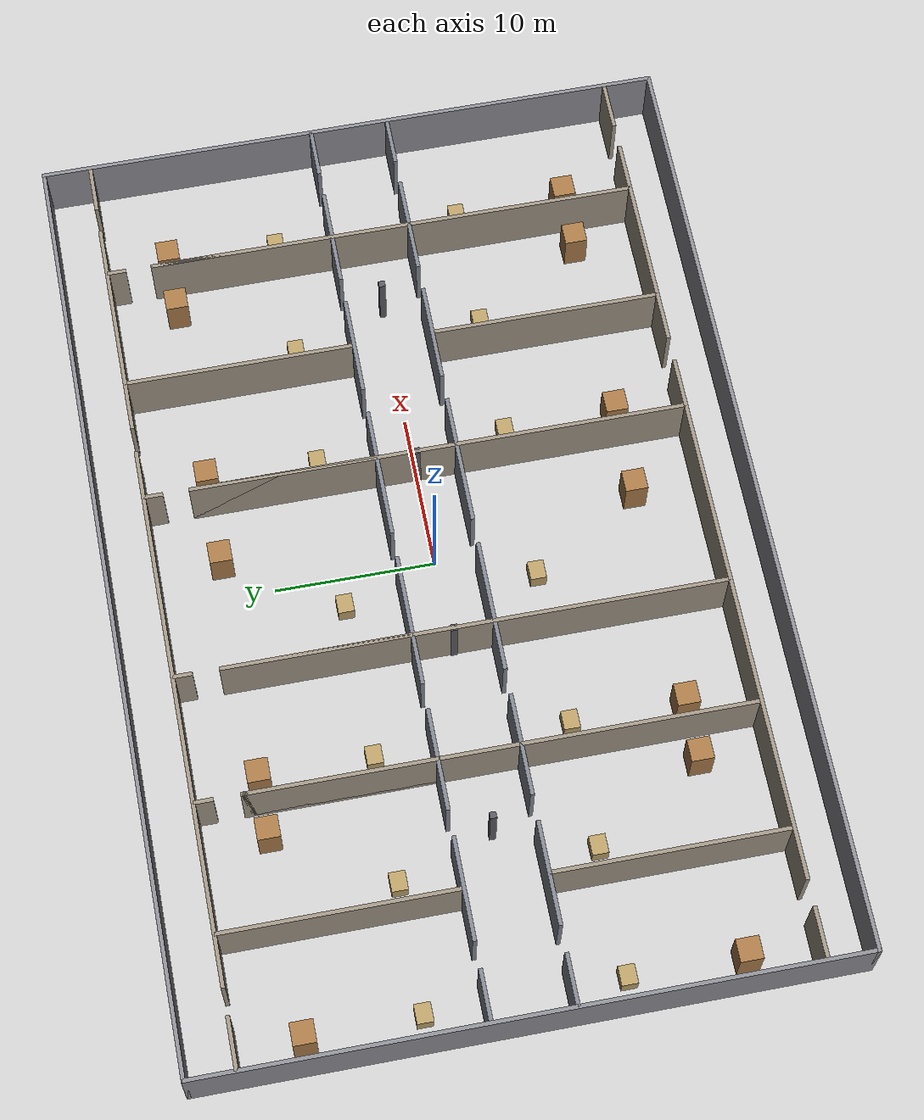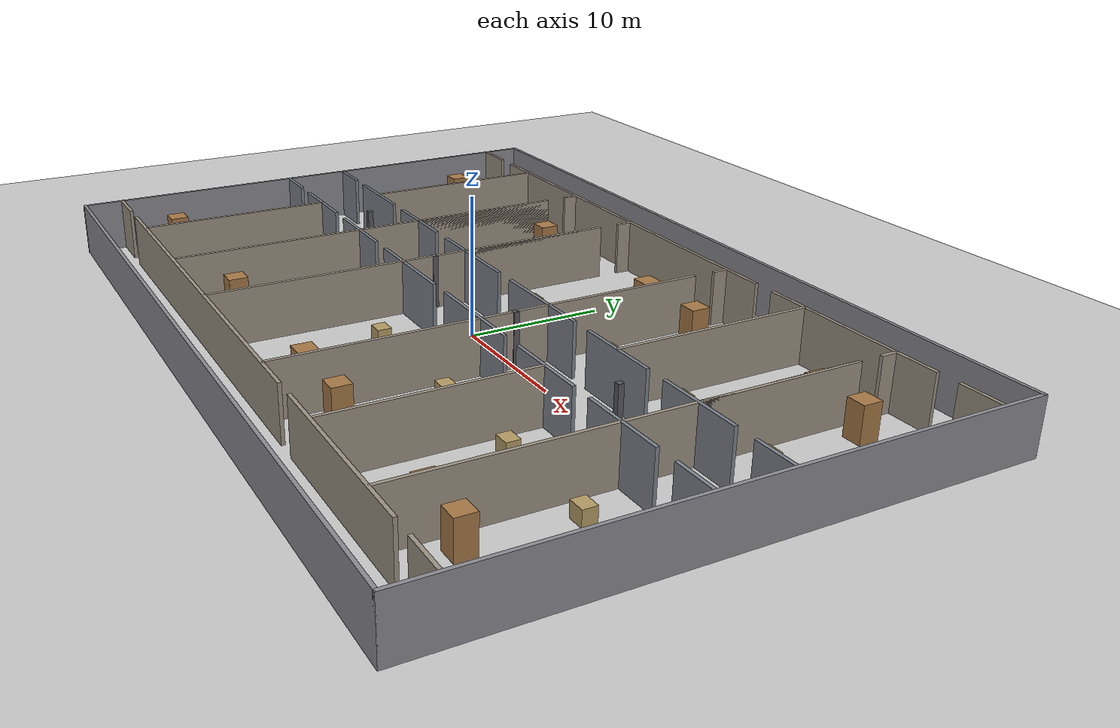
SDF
<?xml version="1.0" encoding="UTF-8"?>
<sdf version="1.9">
  <world name="garudanex_facility">
    <physics type="ode">
      <max_step_size>0.004</max_step_size>
      <real_time_factor>1.0</real_time_factor>
      <real_time_update_rate>250</real_time_update_rate>
    </physics>
    <gravity>0 0 -9.8</gravity>
    <magnetic_field>6e-06 2.3e-05 -4.2e-05</magnetic_field>
    <atmosphere type="adiabatic"/>
    <scene>
      <grid>false</grid>
      <ambient>0.4 0.4 0.4 1</ambient>
      <background>0.7 0.7 0.7 1</background>
      <shadows>true</shadows>
    </scene>
    <model name="ground_plane">
      <static>true</static>
      <link name="link">
        <collision name="collision">
          <geometry>
            <plane>
              <normal>0 0 1</normal>
              <size>1 1</size>
            </plane>
          </geometry>
          <surface>
            <friction>
              <ode/>
            </friction>
            <bounce/>
            <contact/>
          </surface>
        </collision>
        <visual name="visual">
          <geometry>
            <plane>
              <normal>0 0 1</normal>
              <size>500 500</size>
            </plane>
          </geometry>
          <material>
            <ambient>0.8 0.8 0.8 1</ambient>
            <diffuse>0.8 0.8 0.8 1</diffuse>
            <specular>0.8 0.8 0.8 1</specular>
          </material>
        </visual>
        <pose>0 0 0 0 -0 0</pose>
        <inertial>
          <pose>0 0 0 0 -0 0</pose>
          <mass>1</mass>
          <inertia>
            <ixx>1</ixx>
            <ixy>0</ixy>
            <ixz>0</ixz>
            <iyy>1</iyy>
            <iyz>0</iyz>
            <izz>1</izz>
          </inertia>
        </inertial>
        <enable_wind>false</enable_wind>
      </link>
      <pose>0 0 0 0 -0 0</pose>
      <self_collide>false</self_collide>
    </model>
    <light name="sunUTC" type="directional">
      <pose>0 0 500 0 -0 0</pose>
      <cast_shadows>true</cast_shadows>
      <intensity>1</intensity>
      <direction>0.001 0.625 -0.78</direction>
      <diffuse>0.904 0.904 0.904 1</diffuse>
      <specular>0.271 0.271 0.271 1</specular>
      <attenuation>
        <range>2000</range>
        <linear>0</linear>
        <constant>1</constant>
        <quadratic>0</quadratic>
      </attenuation>
      <spot>
        <inner_angle>0</inner_angle>
        <outer_angle>0</outer_angle>
        <falloff>0</falloff>
      </spot>
    </light>
    <spherical_coordinates>
      <surface_model>EARTH_WGS84</surface_model>
      <world_frame_orientation>ENU</world_frame_orientation>
      <latitude_deg>47.397971057728974</latitude_deg>
      <longitude_deg> 8.546163739800146</longitude_deg>
      <elevation>0</elevation>
    </spherical_coordinates>

    <model name="shell">
    <static>true</static>
    <link name="north">
      <pose>0.000 20.000 2.000 0 0 0</pose>
      <collision name="c"><geometry><box><size>60.250 0.250 4.000</size></box></geometry></collision>
      <visual name="v">
        <geometry><box><size>60.250 0.250 4.000</size></box></geometry>
        <material><ambient>0.55 0.55 0.58 1</ambient><diffuse>0.55 0.55 0.58 1</diffuse></material>
      </visual>
    </link>
    <link name="south">
      <pose>0.000 -20.000 2.000 0 0 0</pose>
      <collision name="c"><geometry><box><size>60.250 0.250 4.000</size></box></geometry></collision>
      <visual name="v">
        <geometry><box><size>60.250 0.250 4.000</size></box></geometry>
        <material><ambient>0.55 0.55 0.58 1</ambient><diffuse>0.55 0.55 0.58 1</diffuse></material>
      </visual>
    </link>
    <link name="east">
      <pose>30.000 0.000 2.000 0 0 0</pose>
      <collision name="c"><geometry><box><size>0.250 40.250 4.000</size></box></geometry></collision>
      <visual name="v">
        <geometry><box><size>0.250 40.250 4.000</size></box></geometry>
        <material><ambient>0.55 0.55 0.58 1</ambient><diffuse>0.55 0.55 0.58 1</diffuse></material>
      </visual>
    </link>
    <link name="west">
      <pose>-30.000 0.000 2.000 0 0 0</pose>
      <collision name="c"><geometry><box><size>0.250 40.250 4.000</size></box></geometry></collision>
      <visual name="v">
        <geometry><box><size>0.250 40.250 4.000</size></box></geometry>
        <material><ambient>0.55 0.55 0.58 1</ambient><diffuse>0.55 0.55 0.58 1</diffuse></material>
      </visual>
    </link>
    </model>

    <model name="spine">
    <static>true</static>
    <link name="spine_n_0">
      <pose>-28.400 2.500 2.000 0 0 0</pose>
      <collision name="c"><geometry><box><size>3.200 0.250 4.000</size></box></geometry></collision>
      <visual name="v">
        <geometry><box><size>3.200 0.250 4.000</size></box></geometry>
        <material><ambient>0.50 0.52 0.56 1</ambient><diffuse>0.50 0.52 0.56 1</diffuse></material>
      </visual>
    </link>
    <link name="spine_n_2">
      <pose>-22.000 2.500 2.000 0 0 0</pose>
      <collision name="c"><geometry><box><size>6.400 0.250 4.000</size></box></geometry></collision>
      <visual name="v">
        <geometry><box><size>6.400 0.250 4.000</size></box></geometry>
        <material><ambient>0.50 0.52 0.56 1</ambient><diffuse>0.50 0.52 0.56 1</diffuse></material>
      </visual>
    </link>
    <link name="spine_n_4">
      <pose>-14.000 2.500 2.000 0 0 0</pose>
      <collision name="c"><geometry><box><size>6.400 0.250 4.000</size></box></geometry></collision>
      <visual name="v">
        <geometry><box><size>6.400 0.250 4.000</size></box></geometry>
        <material><ambient>0.50 0.52 0.56 1</ambient><diffuse>0.50 0.52 0.56 1</diffuse></material>
      </visual>
    </link>
    <link name="spine_n_6">
      <pose>-5.000 2.500 2.000 0 0 0</pose>
      <collision name="c"><geometry><box><size>8.400 0.250 4.000</size></box></geometry></collision>
      <visual name="v">
        <geometry><box><size>8.400 0.250 4.000</size></box></geometry>
        <material><ambient>0.50 0.52 0.56 1</ambient><diffuse>0.50 0.52 0.56 1</diffuse></material>
      </visual>
    </link>
    <link name="spine_n_8">
      <pose>5.000 2.500 2.000 0 0 0</pose>
      <collision name="c"><geometry><box><size>8.400 0.250 4.000</size></box></geometry></collision>
      <visual name="v">
        <geometry><box><size>8.400 0.250 4.000</size></box></geometry>
        <material><ambient>0.50 0.52 0.56 1</ambient><diffuse>0.50 0.52 0.56 1</diffuse></material>
      </visual>
    </link>
    <link name="spine_n_10">
      <pose>14.000 2.500 2.000 0 0 0</pose>
      <collision name="c"><geometry><box><size>6.400 0.250 4.000</size></box></geometry></collision>
      <visual name="v">
        <geometry><box><size>6.400 0.250 4.000</size></box></geometry>
        <material><ambient>0.50 0.52 0.56 1</ambient><diffuse>0.50 0.52 0.56 1</diffuse></material>
      </visual>
    </link>
    <link name="spine_n_12">
      <pose>22.000 2.500 2.000 0 0 0</pose>
      <collision name="c"><geometry><box><size>6.400 0.250 4.000</size></box></geometry></collision>
      <visual name="v">
        <geometry><box><size>6.400 0.250 4.000</size></box></geometry>
        <material><ambient>0.50 0.52 0.56 1</ambient><diffuse>0.50 0.52 0.56 1</diffuse></material>
      </visual>
    </link>
    <link name="spine_n_14">
      <pose>28.400 2.500 2.000 0 0 0</pose>
      <collision name="c"><geometry><box><size>3.200 0.250 4.000</size></box></geometry></collision>
      <visual name="v">
        <geometry><box><size>3.200 0.250 4.000</size></box></geometry>
        <material><ambient>0.50 0.52 0.56 1</ambient><diffuse>0.50 0.52 0.56 1</diffuse></material>
      </visual>
    </link>
    <link name="spine_s_0">
      <pose>-28.400 -2.500 2.000 0 0 0</pose>
      <collision name="c"><geometry><box><size>3.200 0.250 4.000</size></box></geometry></collision>
      <visual name="v">
        <geometry><box><size>3.200 0.250 4.000</size></box></geometry>
        <material><ambient>0.50 0.52 0.56 1</ambient><diffuse>0.50 0.52 0.56 1</diffuse></material>
      </visual>
    </link>
    <link name="spine_s_2">
      <pose>-22.000 -2.500 2.000 0 0 0</pose>
      <collision name="c"><geometry><box><size>6.400 0.250 4.000</size></box></geometry></collision>
      <visual name="v">
        <geometry><box><size>6.400 0.250 4.000</size></box></geometry>
        <material><ambient>0.50 0.52 0.56 1</ambient><diffuse>0.50 0.52 0.56 1</diffuse></material>
      </visual>
    </link>
    <link name="spine_s_4">
      <pose>-14.000 -2.500 2.000 0 0 0</pose>
      <collision name="c"><geometry><box><size>6.400 0.250 4.000</size></box></geometry></collision>
      <visual name="v">
        <geometry><box><size>6.400 0.250 4.000</size></box></geometry>
        <material><ambient>0.50 0.52 0.56 1</ambient><diffuse>0.50 0.52 0.56 1</diffuse></material>
      </visual>
    </link>
    <link name="spine_s_6">
      <pose>-5.000 -2.500 2.000 0 0 0</pose>
      <collision name="c"><geometry><box><size>8.400 0.250 4.000</size></box></geometry></collision>
      <visual name="v">
        <geometry><box><size>8.400 0.250 4.000</size></box></geometry>
        <material><ambient>0.50 0.52 0.56 1</ambient><diffuse>0.50 0.52 0.56 1</diffuse></material>
      </visual>
    </link>
    <link name="spine_s_8">
      <pose>5.000 -2.500 2.000 0 0 0</pose>
      <collision name="c"><geometry><box><size>8.400 0.250 4.000</size></box></geometry></collision>
      <visual name="v">
        <geometry><box><size>8.400 0.250 4.000</size></box></geometry>
        <material><ambient>0.50 0.52 0.56 1</ambient><diffuse>0.50 0.52 0.56 1</diffuse></material>
      </visual>
    </link>
    <link name="spine_s_10">
      <pose>14.000 -2.500 2.000 0 0 0</pose>
      <collision name="c"><geometry><box><size>6.400 0.250 4.000</size></box></geometry></collision>
      <visual name="v">
        <geometry><box><size>6.400 0.250 4.000</size></box></geometry>
        <material><ambient>0.50 0.52 0.56 1</ambient><diffuse>0.50 0.52 0.56 1</diffuse></material>
      </visual>
    </link>
    <link name="spine_s_12">
      <pose>22.000 -2.500 2.000 0 0 0</pose>
      <collision name="c"><geometry><box><size>6.400 0.250 4.000</size></box></geometry></collision>
      <visual name="v">
        <geometry><box><size>6.400 0.250 4.000</size></box></geometry>
        <material><ambient>0.50 0.52 0.56 1</ambient><diffuse>0.50 0.52 0.56 1</diffuse></material>
      </visual>
    </link>
    <link name="spine_s_14">
      <pose>28.400 -2.500 2.000 0 0 0</pose>
      <collision name="c"><geometry><box><size>3.200 0.250 4.000</size></box></geometry></collision>
      <visual name="v">
        <geometry><box><size>3.200 0.250 4.000</size></box></geometry>
        <material><ambient>0.50 0.52 0.56 1</ambient><diffuse>0.50 0.52 0.56 1</diffuse></material>
      </visual>
    </link>
    </model>

    <model name="rooms_n">
    <static>true</static>
    <link name="pn0_0">
      <pose>-22.000 9.750 2.000 0 0 0</pose>
      <collision name="c"><geometry><box><size>0.250 14.500 4.000</size></box></geometry></collision>
      <visual name="v">
        <geometry><box><size>0.250 14.500 4.000</size></box></geometry>
        <material><ambient>0.62 0.58 0.52 1</ambient><diffuse>0.62 0.58 0.52 1</diffuse></material>
      </visual>
    </link>
    <link name="pn1_0">
      <pose>-14.000 8.350 2.000 0 0 0</pose>
      <collision name="c"><geometry><box><size>0.250 11.700 4.000</size></box></geometry></collision>
      <visual name="v">
        <geometry><box><size>0.250 11.700 4.000</size></box></geometry>
        <material><ambient>0.62 0.58 0.52 1</ambient><diffuse>0.62 0.58 0.52 1</diffuse></material>
      </visual>
    </link>
    <link name="pn1_2">
      <pose>-14.000 16.400 2.000 0 0 0</pose>
      <collision name="c"><geometry><box><size>0.250 1.200 4.000</size></box></geometry></collision>
      <visual name="v">
        <geometry><box><size>0.250 1.200 4.000</size></box></geometry>
        <material><ambient>0.62 0.58 0.52 1</ambient><diffuse>0.62 0.58 0.52 1</diffuse></material>
      </visual>
    </link>
    <link name="pn2_0">
      <pose>-6.000 8.350 2.000 0 0 0</pose>
      <collision name="c"><geometry><box><size>0.250 11.700 4.000</size></box></geometry></collision>
      <visual name="v">
        <geometry><box><size>0.250 11.700 4.000</size></box></geometry>
        <material><ambient>0.62 0.58 0.52 1</ambient><diffuse>0.62 0.58 0.52 1</diffuse></material>
      </visual>
    </link>
    <link name="pn2_2">
      <pose>-6.000 16.400 2.000 0 0 0</pose>
      <collision name="c"><geometry><box><size>0.250 1.200 4.000</size></box></geometry></collision>
      <visual name="v">
        <geometry><box><size>0.250 1.200 4.000</size></box></geometry>
        <material><ambient>0.62 0.58 0.52 1</ambient><diffuse>0.62 0.58 0.52 1</diffuse></material>
      </visual>
    </link>
    <link name="pn3_0">
      <pose>6.000 8.350 2.000 0 0 0</pose>
      <collision name="c"><geometry><box><size>0.250 11.700 4.000</size></box></geometry></collision>
      <visual name="v">
        <geometry><box><size>0.250 11.700 4.000</size></box></geometry>
        <material><ambient>0.62 0.58 0.52 1</ambient><diffuse>0.62 0.58 0.52 1</diffuse></material>
      </visual>
    </link>
    <link name="pn3_2">
      <pose>6.000 16.400 2.000 0 0 0</pose>
      <collision name="c"><geometry><box><size>0.250 1.200 4.000</size></box></geometry></collision>
      <visual name="v">
        <geometry><box><size>0.250 1.200 4.000</size></box></geometry>
        <material><ambient>0.62 0.58 0.52 1</ambient><diffuse>0.62 0.58 0.52 1</diffuse></material>
      </visual>
    </link>
    <link name="pn4_0">
      <pose>14.000 9.750 2.000 0 0 0</pose>
      <collision name="c"><geometry><box><size>0.250 14.500 4.000</size></box></geometry></collision>
      <visual name="v">
        <geometry><box><size>0.250 14.500 4.000</size></box></geometry>
        <material><ambient>0.62 0.58 0.52 1</ambient><diffuse>0.62 0.58 0.52 1</diffuse></material>
      </visual>
    </link>
    <link name="pn5_0">
      <pose>22.000 8.350 2.000 0 0 0</pose>
      <collision name="c"><geometry><box><size>0.250 11.700 4.000</size></box></geometry></collision>
      <visual name="v">
        <geometry><box><size>0.250 11.700 4.000</size></box></geometry>
        <material><ambient>0.62 0.58 0.52 1</ambient><diffuse>0.62 0.58 0.52 1</diffuse></material>
      </visual>
    </link>
    <link name="pn5_2">
      <pose>22.000 16.400 2.000 0 0 0</pose>
      <collision name="c"><geometry><box><size>0.250 1.200 4.000</size></box></geometry></collision>
      <visual name="v">
        <geometry><box><size>0.250 1.200 4.000</size></box></geometry>
        <material><ambient>0.62 0.58 0.52 1</ambient><diffuse>0.62 0.58 0.52 1</diffuse></material>
      </visual>
    </link>
    <link name="backn_0">
      <pose>-28.400 17.000 2.000 0 0 0</pose>
      <collision name="c"><geometry><box><size>3.200 0.250 4.000</size></box></geometry></collision>
      <visual name="v">
        <geometry><box><size>3.200 0.250 4.000</size></box></geometry>
        <material><ambient>0.62 0.58 0.52 1</ambient><diffuse>0.62 0.58 0.52 1</diffuse></material>
      </visual>
    </link>
    <link name="backn_2">
      <pose>-8.000 17.000 2.000 0 0 0</pose>
      <collision name="c"><geometry><box><size>34.400 0.250 4.000</size></box></geometry></collision>
      <visual name="v">
        <geometry><box><size>34.400 0.250 4.000</size></box></geometry>
        <material><ambient>0.62 0.58 0.52 1</ambient><diffuse>0.62 0.58 0.52 1</diffuse></material>
      </visual>
    </link>
    <link name="backn_4">
      <pose>18.000 17.000 2.000 0 0 0</pose>
      <collision name="c"><geometry><box><size>14.400 0.250 4.000</size></box></geometry></collision>
      <visual name="v">
        <geometry><box><size>14.400 0.250 4.000</size></box></geometry>
        <material><ambient>0.62 0.58 0.52 1</ambient><diffuse>0.62 0.58 0.52 1</diffuse></material>
      </visual>
    </link>
    <link name="backn_6">
      <pose>28.400 17.000 2.000 0 0 0</pose>
      <collision name="c"><geometry><box><size>3.200 0.250 4.000</size></box></geometry></collision>
      <visual name="v">
        <geometry><box><size>3.200 0.250 4.000</size></box></geometry>
        <material><ambient>0.62 0.58 0.52 1</ambient><diffuse>0.62 0.58 0.52 1</diffuse></material>
      </visual>
    </link>
    </model>

    <model name="rooms_s">
    <static>true</static>
    <link name="ps0_0">
      <pose>-22.000 -9.750 2.000 0 0 0</pose>
      <collision name="c"><geometry><box><size>0.250 14.500 4.000</size></box></geometry></collision>
      <visual name="v">
        <geometry><box><size>0.250 14.500 4.000</size></box></geometry>
        <material><ambient>0.62 0.58 0.52 1</ambient><diffuse>0.62 0.58 0.52 1</diffuse></material>
      </visual>
    </link>
    <link name="ps1_0">
      <pose>-14.000 -1.400 2.000 0 0 0</pose>
      <collision name="c"><geometry><box><size>0.250 31.200 4.000</size></box></geometry></collision>
      <visual name="v">
        <geometry><box><size>0.250 31.200 4.000</size></box></geometry>
        <material><ambient>0.62 0.58 0.52 1</ambient><diffuse>0.62 0.58 0.52 1</diffuse></material>
      </visual>
    </link>
    <link name="ps2_0">
      <pose>-6.000 -1.400 2.000 0 0 0</pose>
      <collision name="c"><geometry><box><size>0.250 31.200 4.000</size></box></geometry></collision>
      <visual name="v">
        <geometry><box><size>0.250 31.200 4.000</size></box></geometry>
        <material><ambient>0.62 0.58 0.52 1</ambient><diffuse>0.62 0.58 0.52 1</diffuse></material>
      </visual>
    </link>
    <link name="ps3_0">
      <pose>6.000 -1.400 2.000 0 0 0</pose>
      <collision name="c"><geometry><box><size>0.250 31.200 4.000</size></box></geometry></collision>
      <visual name="v">
        <geometry><box><size>0.250 31.200 4.000</size></box></geometry>
        <material><ambient>0.62 0.58 0.52 1</ambient><diffuse>0.62 0.58 0.52 1</diffuse></material>
      </visual>
    </link>
    <link name="ps4_0">
      <pose>14.000 -9.750 2.000 0 0 0</pose>
      <collision name="c"><geometry><box><size>0.250 14.500 4.000</size></box></geometry></collision>
      <visual name="v">
        <geometry><box><size>0.250 14.500 4.000</size></box></geometry>
        <material><ambient>0.62 0.58 0.52 1</ambient><diffuse>0.62 0.58 0.52 1</diffuse></material>
      </visual>
    </link>
    <link name="ps5_0">
      <pose>22.000 -1.400 2.000 0 0 0</pose>
      <collision name="c"><geometry><box><size>0.250 31.200 4.000</size></box></geometry></collision>
      <visual name="v">
        <geometry><box><size>0.250 31.200 4.000</size></box></geometry>
        <material><ambient>0.62 0.58 0.52 1</ambient><diffuse>0.62 0.58 0.52 1</diffuse></material>
      </visual>
    </link>
    <link name="backs_0">
      <pose>-28.400 -17.000 2.000 0 0 0</pose>
      <collision name="c"><geometry><box><size>3.200 0.250 4.000</size></box></geometry></collision>
      <visual name="v">
        <geometry><box><size>3.200 0.250 4.000</size></box></geometry>
        <material><ambient>0.62 0.58 0.52 1</ambient><diffuse>0.62 0.58 0.52 1</diffuse></material>
      </visual>
    </link>
    <link name="backs_2">
      <pose>-8.000 -17.000 2.000 0 0 0</pose>
      <collision name="c"><geometry><box><size>34.400 0.250 4.000</size></box></geometry></collision>
      <visual name="v">
        <geometry><box><size>34.400 0.250 4.000</size></box></geometry>
        <material><ambient>0.62 0.58 0.52 1</ambient><diffuse>0.62 0.58 0.52 1</diffuse></material>
      </visual>
    </link>
    <link name="backs_4">
      <pose>18.000 -17.000 2.000 0 0 0</pose>
      <collision name="c"><geometry><box><size>14.400 0.250 4.000</size></box></geometry></collision>
      <visual name="v">
        <geometry><box><size>14.400 0.250 4.000</size></box></geometry>
        <material><ambient>0.62 0.58 0.52 1</ambient><diffuse>0.62 0.58 0.52 1</diffuse></material>
      </visual>
    </link>
    <link name="backs_6">
      <pose>28.400 -17.000 2.000 0 0 0</pose>
      <collision name="c"><geometry><box><size>3.200 0.250 4.000</size></box></geometry></collision>
      <visual name="v">
        <geometry><box><size>3.200 0.250 4.000</size></box></geometry>
        <material><ambient>0.62 0.58 0.52 1</ambient><diffuse>0.62 0.58 0.52 1</diffuse></material>
      </visual>
    </link>
    </model>

    <model name="crates">
    <static>true</static>
    <link name="crate_0">
      <pose>-28.200 13.000 1.300 0 0 0</pose>
      <collision name="c"><geometry><box><size>1.400 1.400 2.600</size></box></geometry></collision>
      <visual name="v">
        <geometry><box><size>1.400 1.400 2.600</size></box></geometry>
        <material><ambient>0.66 0.48 0.28 1</ambient><diffuse>0.66 0.48 0.28 1</diffuse></material>
      </visual>
    </link>
    <link name="crate_1">
      <pose>-28.200 -13.000 1.300 0 0 0</pose>
      <collision name="c"><geometry><box><size>1.400 1.400 2.600</size></box></geometry></collision>
      <visual name="v">
        <geometry><box><size>1.400 1.400 2.600</size></box></geometry>
        <material><ambient>0.66 0.48 0.28 1</ambient><diffuse>0.66 0.48 0.28 1</diffuse></material>
      </visual>
    </link>
    <link name="crate_2">
      <pose>-15.800 13.000 1.300 0 0 0</pose>
      <collision name="c"><geometry><box><size>1.400 1.400 2.600</size></box></geometry></collision>
      <visual name="v">
        <geometry><box><size>1.400 1.400 2.600</size></box></geometry>
        <material><ambient>0.66 0.48 0.28 1</ambient><diffuse>0.66 0.48 0.28 1</diffuse></material>
      </visual>
    </link>
    <link name="crate_3">
      <pose>-15.800 -13.000 1.300 0 0 0</pose>
      <collision name="c"><geometry><box><size>1.400 1.400 2.600</size></box></geometry></collision>
      <visual name="v">
        <geometry><box><size>1.400 1.400 2.600</size></box></geometry>
        <material><ambient>0.66 0.48 0.28 1</ambient><diffuse>0.66 0.48 0.28 1</diffuse></material>
      </visual>
    </link>
    <link name="crate_4">
      <pose>-12.200 13.000 1.300 0 0 0</pose>
      <collision name="c"><geometry><box><size>1.400 1.400 2.600</size></box></geometry></collision>
      <visual name="v">
        <geometry><box><size>1.400 1.400 2.600</size></box></geometry>
        <material><ambient>0.66 0.48 0.28 1</ambient><diffuse>0.66 0.48 0.28 1</diffuse></material>
      </visual>
    </link>
    <link name="crate_5">
      <pose>-12.200 -13.000 1.300 0 0 0</pose>
      <collision name="c"><geometry><box><size>1.400 1.400 2.600</size></box></geometry></collision>
      <visual name="v">
        <geometry><box><size>1.400 1.400 2.600</size></box></geometry>
        <material><ambient>0.66 0.48 0.28 1</ambient><diffuse>0.66 0.48 0.28 1</diffuse></material>
      </visual>
    </link>
    <link name="crate_6">
      <pose>2.200 13.000 1.300 0 0 0</pose>
      <collision name="c"><geometry><box><size>1.400 1.400 2.600</size></box></geometry></collision>
      <visual name="v">
        <geometry><box><size>1.400 1.400 2.600</size></box></geometry>
        <material><ambient>0.66 0.48 0.28 1</ambient><diffuse>0.66 0.48 0.28 1</diffuse></material>
      </visual>
    </link>
    <link name="crate_7">
      <pose>2.200 -13.000 1.300 0 0 0</pose>
      <collision name="c"><geometry><box><size>1.400 1.400 2.600</size></box></geometry></collision>
      <visual name="v">
        <geometry><box><size>1.400 1.400 2.600</size></box></geometry>
        <material><ambient>0.66 0.48 0.28 1</ambient><diffuse>0.66 0.48 0.28 1</diffuse></material>
      </visual>
    </link>
    <link name="crate_8">
      <pose>7.800 13.000 1.300 0 0 0</pose>
      <collision name="c"><geometry><box><size>1.400 1.400 2.600</size></box></geometry></collision>
      <visual name="v">
        <geometry><box><size>1.400 1.400 2.600</size></box></geometry>
        <material><ambient>0.66 0.48 0.28 1</ambient><diffuse>0.66 0.48 0.28 1</diffuse></material>
      </visual>
    </link>
    <link name="crate_9">
      <pose>7.800 -13.000 1.300 0 0 0</pose>
      <collision name="c"><geometry><box><size>1.400 1.400 2.600</size></box></geometry></collision>
      <visual name="v">
        <geometry><box><size>1.400 1.400 2.600</size></box></geometry>
        <material><ambient>0.66 0.48 0.28 1</ambient><diffuse>0.66 0.48 0.28 1</diffuse></material>
      </visual>
    </link>
    <link name="crate_10">
      <pose>20.200 13.000 1.300 0 0 0</pose>
      <collision name="c"><geometry><box><size>1.400 1.400 2.600</size></box></geometry></collision>
      <visual name="v">
        <geometry><box><size>1.400 1.400 2.600</size></box></geometry>
        <material><ambient>0.66 0.48 0.28 1</ambient><diffuse>0.66 0.48 0.28 1</diffuse></material>
      </visual>
    </link>
    <link name="crate_11">
      <pose>20.200 -13.000 1.300 0 0 0</pose>
      <collision name="c"><geometry><box><size>1.400 1.400 2.600</size></box></geometry></collision>
      <visual name="v">
        <geometry><box><size>1.400 1.400 2.600</size></box></geometry>
        <material><ambient>0.66 0.48 0.28 1</ambient><diffuse>0.66 0.48 0.28 1</diffuse></material>
      </visual>
    </link>
    <link name="crate_12">
      <pose>23.800 13.000 1.300 0 0 0</pose>
      <collision name="c"><geometry><box><size>1.400 1.400 2.600</size></box></geometry></collision>
      <visual name="v">
        <geometry><box><size>1.400 1.400 2.600</size></box></geometry>
        <material><ambient>0.66 0.48 0.28 1</ambient><diffuse>0.66 0.48 0.28 1</diffuse></material>
      </visual>
    </link>
    <link name="crate_13">
      <pose>23.800 -13.000 1.300 0 0 0</pose>
      <collision name="c"><geometry><box><size>1.400 1.400 2.600</size></box></geometry></collision>
      <visual name="v">
        <geometry><box><size>1.400 1.400 2.600</size></box></geometry>
        <material><ambient>0.66 0.48 0.28 1</ambient><diffuse>0.66 0.48 0.28 1</diffuse></material>
      </visual>
    </link>
    </model>

    <model name="pallets">
    <static>true</static>
    <link name="pallet_0">
      <pose>-28.000 6.000 0.550 0 0 0</pose>
      <collision name="c"><geometry><box><size>1.200 1.000 1.100</size></box></geometry></collision>
      <visual name="v">
        <geometry><box><size>1.200 1.000 1.100</size></box></geometry>
        <material><ambient>0.72 0.62 0.40 1</ambient><diffuse>0.72 0.62 0.40 1</diffuse></material>
      </visual>
    </link>
    <link name="pallet_1">
      <pose>-28.000 -6.000 0.550 0 0 0</pose>
      <collision name="c"><geometry><box><size>1.200 1.000 1.100</size></box></geometry></collision>
      <visual name="v">
        <geometry><box><size>1.200 1.000 1.100</size></box></geometry>
        <material><ambient>0.72 0.62 0.40 1</ambient><diffuse>0.72 0.62 0.40 1</diffuse></material>
      </visual>
    </link>
    <link name="pallet_2">
      <pose>-20.000 6.000 0.550 0 0 0</pose>
      <collision name="c"><geometry><box><size>1.200 1.000 1.100</size></box></geometry></collision>
      <visual name="v">
        <geometry><box><size>1.200 1.000 1.100</size></box></geometry>
        <material><ambient>0.72 0.62 0.40 1</ambient><diffuse>0.72 0.62 0.40 1</diffuse></material>
      </visual>
    </link>
    <link name="pallet_3">
      <pose>-20.000 -6.000 0.550 0 0 0</pose>
      <collision name="c"><geometry><box><size>1.200 1.000 1.100</size></box></geometry></collision>
      <visual name="v">
        <geometry><box><size>1.200 1.000 1.100</size></box></geometry>
        <material><ambient>0.72 0.62 0.40 1</ambient><diffuse>0.72 0.62 0.40 1</diffuse></material>
      </visual>
    </link>
    <link name="pallet_4">
      <pose>-12.000 6.000 0.550 0 0 0</pose>
      <collision name="c"><geometry><box><size>1.200 1.000 1.100</size></box></geometry></collision>
      <visual name="v">
        <geometry><box><size>1.200 1.000 1.100</size></box></geometry>
        <material><ambient>0.72 0.62 0.40 1</ambient><diffuse>0.72 0.62 0.40 1</diffuse></material>
      </visual>
    </link>
    <link name="pallet_5">
      <pose>-12.000 -6.000 0.550 0 0 0</pose>
      <collision name="c"><geometry><box><size>1.200 1.000 1.100</size></box></geometry></collision>
      <visual name="v">
        <geometry><box><size>1.200 1.000 1.100</size></box></geometry>
        <material><ambient>0.72 0.62 0.40 1</ambient><diffuse>0.72 0.62 0.40 1</diffuse></material>
      </visual>
    </link>
    <link name="pallet_6">
      <pose>-2.000 6.000 0.550 0 0 0</pose>
      <collision name="c"><geometry><box><size>1.200 1.000 1.100</size></box></geometry></collision>
      <visual name="v">
        <geometry><box><size>1.200 1.000 1.100</size></box></geometry>
        <material><ambient>0.72 0.62 0.40 1</ambient><diffuse>0.72 0.62 0.40 1</diffuse></material>
      </visual>
    </link>
    <link name="pallet_7">
      <pose>-2.000 -6.000 0.550 0 0 0</pose>
      <collision name="c"><geometry><box><size>1.200 1.000 1.100</size></box></geometry></collision>
      <visual name="v">
        <geometry><box><size>1.200 1.000 1.100</size></box></geometry>
        <material><ambient>0.72 0.62 0.40 1</ambient><diffuse>0.72 0.62 0.40 1</diffuse></material>
      </visual>
    </link>
    <link name="pallet_8">
      <pose>8.000 6.000 0.550 0 0 0</pose>
      <collision name="c"><geometry><box><size>1.200 1.000 1.100</size></box></geometry></collision>
      <visual name="v">
        <geometry><box><size>1.200 1.000 1.100</size></box></geometry>
        <material><ambient>0.72 0.62 0.40 1</ambient><diffuse>0.72 0.62 0.40 1</diffuse></material>
      </visual>
    </link>
    <link name="pallet_9">
      <pose>8.000 -6.000 0.550 0 0 0</pose>
      <collision name="c"><geometry><box><size>1.200 1.000 1.100</size></box></geometry></collision>
      <visual name="v">
        <geometry><box><size>1.200 1.000 1.100</size></box></geometry>
        <material><ambient>0.72 0.62 0.40 1</ambient><diffuse>0.72 0.62 0.40 1</diffuse></material>
      </visual>
    </link>
    <link name="pallet_10">
      <pose>16.000 6.000 0.550 0 0 0</pose>
      <collision name="c"><geometry><box><size>1.200 1.000 1.100</size></box></geometry></collision>
      <visual name="v">
        <geometry><box><size>1.200 1.000 1.100</size></box></geometry>
        <material><ambient>0.72 0.62 0.40 1</ambient><diffuse>0.72 0.62 0.40 1</diffuse></material>
      </visual>
    </link>
    <link name="pallet_11">
      <pose>16.000 -6.000 0.550 0 0 0</pose>
      <collision name="c"><geometry><box><size>1.200 1.000 1.100</size></box></geometry></collision>
      <visual name="v">
        <geometry><box><size>1.200 1.000 1.100</size></box></geometry>
        <material><ambient>0.72 0.62 0.40 1</ambient><diffuse>0.72 0.62 0.40 1</diffuse></material>
      </visual>
    </link>
    <link name="pallet_12">
      <pose>24.000 6.000 0.550 0 0 0</pose>
      <collision name="c"><geometry><box><size>1.200 1.000 1.100</size></box></geometry></collision>
      <visual name="v">
        <geometry><box><size>1.200 1.000 1.100</size></box></geometry>
        <material><ambient>0.72 0.62 0.40 1</ambient><diffuse>0.72 0.62 0.40 1</diffuse></material>
      </visual>
    </link>
    <link name="pallet_13">
      <pose>24.000 -6.000 0.550 0 0 0</pose>
      <collision name="c"><geometry><box><size>1.200 1.000 1.100</size></box></geometry></collision>
      <visual name="v">
        <geometry><box><size>1.200 1.000 1.100</size></box></geometry>
        <material><ambient>0.72 0.62 0.40 1</ambient><diffuse>0.72 0.62 0.40 1</diffuse></material>
      </visual>
    </link>
    </model>

    <model name="columns">
    <static>true</static>
    <link name="col_0">
      <pose>-18.000 0.000 2.000 0 0 0</pose>
      <collision name="c"><geometry><box><size>0.400 0.400 4.000</size></box></geometry></collision>
      <visual name="v">
        <geometry><box><size>0.400 0.400 4.000</size></box></geometry>
        <material><ambient>0.35 0.35 0.38 1</ambient><diffuse>0.35 0.35 0.38 1</diffuse></material>
      </visual>
    </link>
    <link name="col_1">
      <pose>-6.000 0.000 2.000 0 0 0</pose>
      <collision name="c"><geometry><box><size>0.400 0.400 4.000</size></box></geometry></collision>
      <visual name="v">
        <geometry><box><size>0.400 0.400 4.000</size></box></geometry>
        <material><ambient>0.35 0.35 0.38 1</ambient><diffuse>0.35 0.35 0.38 1</diffuse></material>
      </visual>
    </link>
    <link name="col_2">
      <pose>6.000 0.000 2.000 0 0 0</pose>
      <collision name="c"><geometry><box><size>0.400 0.400 4.000</size></box></geometry></collision>
      <visual name="v">
        <geometry><box><size>0.400 0.400 4.000</size></box></geometry>
        <material><ambient>0.35 0.35 0.38 1</ambient><diffuse>0.35 0.35 0.38 1</diffuse></material>
      </visual>
    </link>
    <link name="col_3">
      <pose>18.000 0.000 2.000 0 0 0</pose>
      <collision name="c"><geometry><box><size>0.400 0.400 4.000</size></box></geometry></collision>
      <visual name="v">
        <geometry><box><size>0.400 0.400 4.000</size></box></geometry>
        <material><ambient>0.35 0.35 0.38 1</ambient><diffuse>0.35 0.35 0.38 1</diffuse></material>
      </visual>
    </link>
    </model>
</world>
</sdf>
